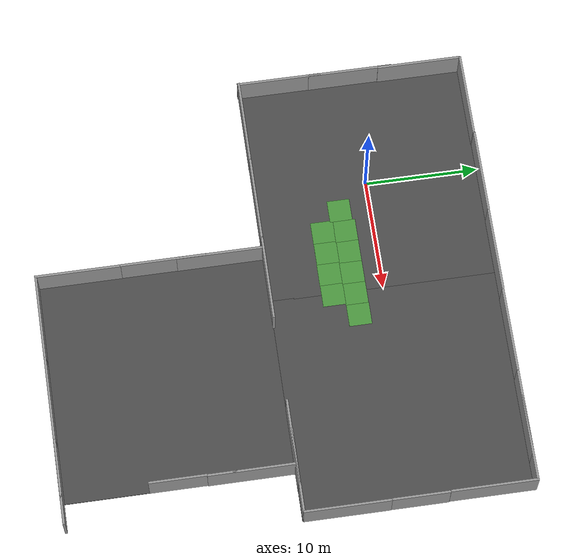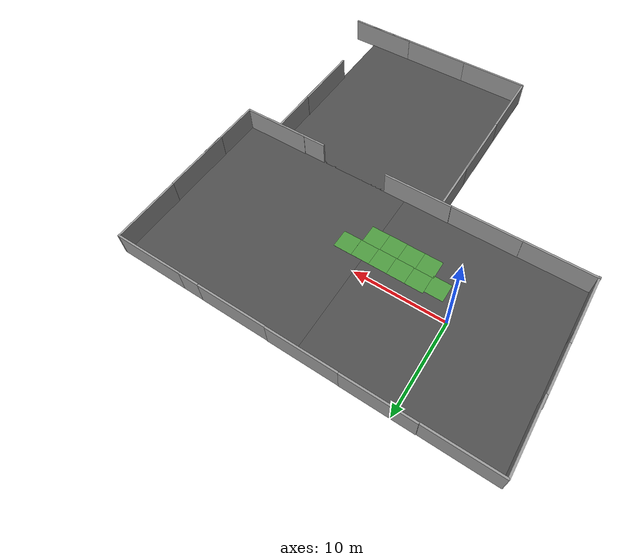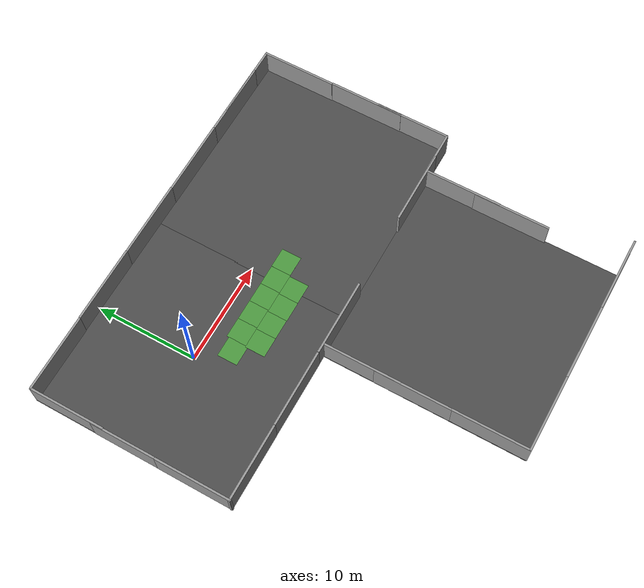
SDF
<sdf version="1.7">
 <world name="default">
  <light name="sun" type="directional">
   <pose>0 0 10 0 -0 0</pose>
   <diffuse>0.8 0.8 0.8 1</diffuse>
   <specular>0.1 0.1 0.1 1</specular>
   <attenuation>
    <range>1000</range>
    <constant>0.9</constant>
    <linear>0.01</linear>
    <quadratic>0.001</quadratic>
   </attenuation>
   <direction>-0.5 0.5 -1</direction>
   <spot><inner_angle>0</inner_angle><outer_angle>0</outer_angle><falloff>0</falloff></spot>
  </light>
  <gravity>0 0 -9.8</gravity>
  <magnetic_field>6e-06 2.3e-05 -4.2e-05</magnetic_field>
  <atmosphere type="adiabatic"/>
  <physics name="default_physics" default="0" type="ode">
   <max_step_size>0.001</max_step_size>
   <real_time_factor>1</real_time_factor>
   <real_time_update_rate>1000</real_time_update_rate>
  </physics>
  <scene><ambient>0.4 0.4 0.4 1</ambient><background>0.7 0.7 0.7 1</background><shadows>1</shadows></scene>
  <spherical_coordinates>
   <surface_model>EARTH_WGS84</surface_model>
   <latitude_deg>0</latitude_deg>
   <longitude_deg>0</longitude_deg>
   <elevation>0</elevation>
   <heading_deg>0</heading_deg>
  </spherical_coordinates>
  <model name="asphalt_plane">
   <static>1</static>
   <link name="link">
    <collision name="collision"><geometry><box><size>20 20 0.1</size></box></geometry></collision>
    <visual name="visual">
     <cast_shadows>0</cast_shadows>
     <geometry><box><size>20 20 0.1</size></box></geometry>
     <material>
      <script>
       <uri>model://asphalt_plane/materials/scripts</uri>
       <uri>model://asphalt_plane/materials/textures</uri>
       <name>vrc/asphalt</name>
      </script>
     </material>
    </visual>
   </link>
  </model>
  <model name="grey_wall">
   <static>1</static>
   <link name="link">
    <pose>0 0 1.4 0 -0 0</pose>
    <collision name="collision"><geometry><box><size>7.5 0.2 2.8</size></box></geometry></collision>
    <visual name="visual">
     <cast_shadows>0</cast_shadows>
     <geometry><box><size>7.5 0.2 2.8</size></box></geometry>
     <material>
      <script>
       <uri>model://grey_wall/materials/scripts</uri>
       <uri>model://grey_wall/materials/textures</uri>
       <name>vrc/grey_wall</name>
      </script>
     </material>
    </visual>
   </link>
   <pose>-6.34299 -9.98083 0 0 -0 0</pose>
  </model>
  <model name="grey_wall_clone">
   <static>1</static>
   <link name="link">
    <pose>0 0 1.4 0 -0 0</pose>
    <collision name="collision"><geometry><box><size>7.5 0.2 2.8</size></box></geometry></collision>
    <visual name="visual">
     <cast_shadows>0</cast_shadows>
     <geometry><box><size>7.5 0.2 2.8</size></box></geometry>
     <material>
      <script>
       <uri>model://grey_wall/materials/scripts</uri>
       <uri>model://grey_wall/materials/textures</uri>
       <name>vrc/grey_wall</name>
      </script>
     </material>
    </visual>
   </link>
   <pose>1.16889 -9.97033 0 0 -0 0</pose>
  </model>
  <model name="grey_wall_clone_0">
   <static>1</static>
   <link name="link">
    <pose>0 0 1.4 0 -0 0</pose>
    <collision name="collision"><geometry><box><size>7.5 0.2 2.8</size></box></geometry></collision>
    <visual name="visual">
     <cast_shadows>0</cast_shadows>
     <geometry><box><size>7.5 0.2 2.8</size></box></geometry>
     <material>
      <script>
       <uri>model://grey_wall/materials/scripts</uri>
       <uri>model://grey_wall/materials/textures</uri>
       <name>vrc/grey_wall</name>
      </script>
     </material>
    </visual>
   </link>
   <pose>8.70546 -9.9612 0 0 -0 0</pose>
  </model>
  <model name="asphalt_plane_0">
   <static>1</static>
   <link name="link">
    <collision name="collision"><geometry><box><size>20 20 0.1</size></box></geometry></collision>
    <visual name="visual">
     <cast_shadows>0</cast_shadows>
     <geometry><box><size>20 20 0.1</size></box></geometry>
     <material>
      <script>
       <uri>model://asphalt_plane/materials/scripts</uri>
       <uri>model://asphalt_plane/materials/textures</uri>
       <name>vrc/asphalt</name>
      </script>
     </material>
    </visual>
   </link>
   <pose>19.9219 0.006389 0 0 -0 0</pose>
  </model>
  <model name="grey_wall_clone_0_clone_clone">
   <static>1</static>
   <link name="link">
    <pose>0 0 1.4 0 -0 0</pose>
    <collision name="collision"><geometry><box><size>7.5 0.2 2.8</size></box></geometry></collision>
    <visual name="visual">
     <cast_shadows>0</cast_shadows>
     <geometry><box><size>7.5 0.2 2.8</size></box></geometry>
     <material>
      <script>
       <uri>model://grey_wall/materials/scripts</uri>
       <uri>model://grey_wall/materials/textures</uri>
       <name>vrc/grey_wall</name>
      </script>
     </material>
    </visual>
   </link>
   <pose>23.7504 -9.91232 0 0 -0 0</pose>
  </model>
  <model name="grey_wall_clone_0_clone_clone_1">
   <static>1</static>
   <link name="link">
    <pose>0 0 1.4 0 -0 0</pose>
    <collision name="collision"><geometry><box><size>7.5 0.2 2.8</size></box></geometry></collision>
    <visual name="visual">
     <cast_shadows>0</cast_shadows>
     <geometry><box><size>7.5 0.2 2.8</size></box></geometry>
     <material>
      <script>
       <uri>model://grey_wall/materials/scripts</uri>
       <uri>model://grey_wall/materials/textures</uri>
       <name>vrc/grey_wall</name>
      </script>
     </material>
    </visual>
   </link>
   <pose>1.3555 10.0153 0 0 -0 0</pose>
  </model>
  <model name="grey_wall_clone_0_clone_clone_2">
   <static>1</static>
   <link name="link">
    <pose>0 0 1.4 0 -0 0</pose>
    <collision name="collision"><geometry><box><size>7.5 0.2 2.8</size></box></geometry></collision>
    <visual name="visual">
     <cast_shadows>0</cast_shadows>
     <geometry><box><size>7.5 0.2 2.8</size></box></geometry>
     <material>
      <script>
       <uri>model://grey_wall/materials/scripts</uri>
       <uri>model://grey_wall/materials/textures</uri>
       <name>vrc/grey_wall</name>
      </script>
     </material>
    </visual>
   </link>
   <pose>8.86552 9.99863 0 0 -0 0</pose>
  </model>
  <model name="grey_wall_clone_0_clone_clone_0">
   <static>1</static>
   <link name="link">
    <pose>0 0 1.4 0 -0 0</pose>
    <collision name="collision"><geometry><box><size>7.5 0.2 2.8</size></box></geometry></collision>
    <visual name="visual">
     <cast_shadows>0</cast_shadows>
     <geometry><box><size>7.5 0.2 2.8</size></box></geometry>
     <material>
      <script>
       <uri>model://grey_wall/materials/scripts</uri>
       <uri>model://grey_wall/materials/textures</uri>
       <name>vrc/grey_wall</name>
      </script>
     </material>
    </visual>
   </link>
   <pose>-6.16796 9.97781 0 0 -0 0</pose>
  </model>
  <model name="grey_wall_clone_0_clone_clone_3">
   <static>1</static>
   <link name="link">
    <pose>0 0 1.4 0 -0 0</pose>
    <collision name="collision"><geometry><box><size>7.5 0.2 2.8</size></box></geometry></collision>
    <visual name="visual">
     <cast_shadows>0</cast_shadows>
     <geometry><box><size>7.5 0.2 2.8</size></box></geometry>
     <material>
      <script>
       <uri>model://grey_wall/materials/scripts</uri>
       <uri>model://grey_wall/materials/textures</uri>
       <name>vrc/grey_wall</name>
      </script>
     </material>
    </visual>
   </link>
   <pose>16.365 9.97288 0 0 -0 0</pose>
  </model>
  <model name="grey_wall_clone_0_clone_clone_4">
   <static>1</static>
   <link name="link">
    <pose>0 0 1.4 0 -0 0</pose>
    <collision name="collision"><geometry><box><size>7.5 0.2 2.8</size></box></geometry></collision>
    <visual name="visual">
     <cast_shadows>0</cast_shadows>
     <geometry><box><size>7.5 0.2 2.8</size></box></geometry>
     <material>
      <script>
       <uri>model://grey_wall/materials/scripts</uri>
       <uri>model://grey_wall/materials/textures</uri>
       <name>vrc/grey_wall</name>
      </script>
     </material>
    </visual>
   </link>
   <pose>23.8974 9.95874 0 0 -0 0</pose>
  </model>
  <model name="grey_wall_clone_0_clone_clone_4_clone">
   <static>1</static>
   <link name="link">
    <pose>0 0 1.4 0 -0 0</pose>
    <collision name="collision"><geometry><box><size>7.5 0.2 2.8</size></box></geometry></collision>
    <visual name="visual">
     <cast_shadows>0</cast_shadows>
     <geometry><box><size>7.5 0.2 2.8</size></box></geometry>
     <material>
      <script>
       <uri>model://grey_wall/materials/scripts</uri>
       <uri>model://grey_wall/materials/textures</uri>
       <name>vrc/grey_wall</name>
      </script>
     </material>
    </visual>
   </link>
   <pose>29.9378 6.30804 0 0 -0 1.57</pose>
  </model>
  <model name="grey_wall_clone_0_clone_clone_4_clone_0">
   <static>1</static>
   <link name="link">
    <pose>0 0 1.4 0 -0 0</pose>
    <collision name="collision"><geometry><box><size>7.5 0.2 2.8</size></box></geometry></collision>
    <visual name="visual">
     <cast_shadows>0</cast_shadows>
     <geometry><box><size>7.5 0.2 2.8</size></box></geometry>
     <material>
      <script>
       <uri>model://grey_wall/materials/scripts</uri>
       <uri>model://grey_wall/materials/textures</uri>
       <name>vrc/grey_wall</name>
      </script>
     </material>
    </visual>
   </link>
   <pose>26.2746 -9.87846 0 0 -0 0</pose>
  </model>
  <model name="grey_wall_clone_0_clone_clone_4_clone_1">
   <static>1</static>
   <link name="link">
    <pose>0 0 1.4 0 -0 0</pose>
    <collision name="collision"><geometry><box><size>7.5 0.2 2.8</size></box></geometry></collision>
    <visual name="visual">
     <cast_shadows>0</cast_shadows>
     <geometry><box><size>7.5 0.2 2.8</size></box></geometry>
     <material>
      <script>
       <uri>model://grey_wall/materials/scripts</uri>
       <uri>model://grey_wall/materials/textures</uri>
       <name>vrc/grey_wall</name>
      </script>
     </material>
    </visual>
   </link>
   <pose>26.1143 9.96003 0 0 -0 0</pose>
  </model>
  <model name="grey_wall_clone_0_clone_clone_4_clone_clone">
   <static>1</static>
   <link name="link">
    <pose>0 0 1.4 0 -0 0</pose>
    <collision name="collision"><geometry><box><size>7.5 0.2 2.8</size></box></geometry></collision>
    <visual name="visual">
     <cast_shadows>0</cast_shadows>
     <geometry><box><size>7.5 0.2 2.8</size></box></geometry>
     <material>
      <script>
       <uri>model://grey_wall/materials/scripts</uri>
       <uri>model://grey_wall/materials/textures</uri>
       <name>vrc/grey_wall</name>
      </script>
     </material>
    </visual>
   </link>
   <pose>29.9748 -1.21482 0 0 -0 1.57</pose>
  </model>
  <model name="grey_wall_clone_0_clone_clone_4_clone_clone_0">
   <static>1</static>
   <link name="link">
    <pose>0 0 1.4 0 -0 0</pose>
    <collision name="collision"><geometry><box><size>7.5 0.2 2.8</size></box></geometry></collision>
    <visual name="visual">
     <cast_shadows>0</cast_shadows>
     <geometry><box><size>7.5 0.2 2.8</size></box></geometry>
     <material>
      <script>
       <uri>model://grey_wall/materials/scripts</uri>
       <uri>model://grey_wall/materials/textures</uri>
       <name>vrc/grey_wall</name>
      </script>
     </material>
    </visual>
   </link>
   <pose>29.9905 -6.17844 0 0 -0 1.57</pose>
  </model>
  <model name="grey_wall_clone_0_clone_clone_4_clone_clone_1">
   <static>1</static>
   <link name="link">
    <pose>0 0 1.4 0 -0 0</pose>
    <collision name="collision"><geometry><box><size>7.5 0.2 2.8</size></box></geometry></collision>
    <visual name="visual">
     <cast_shadows>0</cast_shadows>
     <geometry><box><size>7.5 0.2 2.8</size></box></geometry>
     <material>
      <script>
       <uri>model://grey_wall/materials/scripts</uri>
       <uri>model://grey_wall/materials/textures</uri>
       <name>vrc/grey_wall</name>
      </script>
     </material>
    </visual>
   </link>
   <pose>-9.87952 6.28271 0 0 -0 1.57</pose>
  </model>
  <model name="grey_wall_clone_0_clone_clone_4_clone_clone_2">
   <static>1</static>
   <link name="link">
    <pose>0 0 1.4 0 -0 0</pose>
    <collision name="collision"><geometry><box><size>7.5 0.2 2.8</size></box></geometry></collision>
    <visual name="visual">
     <cast_shadows>0</cast_shadows>
     <geometry><box><size>7.5 0.2 2.8</size></box></geometry>
     <material>
      <script>
       <uri>model://grey_wall/materials/scripts</uri>
       <uri>model://grey_wall/materials/textures</uri>
       <name>vrc/grey_wall</name>
      </script>
     </material>
    </visual>
   </link>
   <pose>-9.94969 -6.38748 0 0 -0 1.57</pose>
  </model>
  <model name="grey_wall_clone_0_clone_clone_4_clone_clone_3">
   <static>1</static>
   <link name="link">
    <pose>0 0 1.4 0 -0 0</pose>
    <collision name="collision"><geometry><box><size>7.5 0.2 2.8</size></box></geometry></collision>
    <visual name="visual">
     <cast_shadows>0</cast_shadows>
     <geometry><box><size>7.5 0.2 2.8</size></box></geometry>
     <material>
      <script>
       <uri>model://grey_wall/materials/scripts</uri>
       <uri>model://grey_wall/materials/textures</uri>
       <name>vrc/grey_wall</name>
      </script>
     </material>
    </visual>
   </link>
   <pose>-9.93378 0.027886 0 0 -0 1.57</pose>
  </model>
  <audio><device>default</device></audio>
  <model name="asphalt_plane_1">
   <static>1</static>
   <link name="link">
    <collision name="collision"><geometry><box><size>20 20 0.1</size></box></geometry></collision>
    <visual name="visual">
     <cast_shadows>0</cast_shadows>
     <geometry><box><size>20 20 0.1</size></box></geometry>
     <material>
      <script>
       <uri>model://asphalt_plane/materials/scripts</uri>
       <uri>model://asphalt_plane/materials/textures</uri>
       <name>vrc/asphalt</name>
      </script>
     </material>
    </visual>
   </link>
   <pose>15.7588 -19.8717 0 0 -0 0</pose>
  </model>
  <model name="grey_wall_0">
   <static>1</static>
   <link name="link">
    <pose>0 0 1.4 0 -0 0</pose>
    <collision name="collision"><geometry><box><size>7.5 0.2 2.8</size></box></geometry></collision>
    <visual name="visual">
     <cast_shadows>0</cast_shadows>
     <geometry><box><size>7.5 0.2 2.8</size></box></geometry>
     <material>
      <script>
       <uri>model://grey_wall/materials/scripts</uri>
       <uri>model://grey_wall/materials/textures</uri>
       <name>vrc/grey_wall</name>
      </script>
     </material>
    </visual>
   </link>
   <pose>9.57925 -29.847 0 0 -0 0</pose>
  </model>
  <model name="grey_wall_0_clone">
   <static>1</static>
   <link name="link">
    <pose>0 0 1.4 0 -0 0</pose>
    <collision name="collision"><geometry><box><size>7.5 0.2 2.8</size></box></geometry></collision>
    <visual name="visual">
     <cast_shadows>0</cast_shadows>
     <geometry><box><size>7.5 0.2 2.8</size></box></geometry>
     <material>
      <script>
       <uri>model://grey_wall/materials/scripts</uri>
       <uri>model://grey_wall/materials/textures</uri>
       <name>vrc/grey_wall</name>
      </script>
     </material>
    </visual>
   </link>
   <pose>17.0707 -29.8389 0 0 -0 0</pose>
  </model>
  <model name="grey_wall_0_clone_0">
   <static>1</static>
   <link name="link">
    <pose>0 0 1.4 0 -0 0</pose>
    <collision name="collision"><geometry><box><size>7.5 0.2 2.8</size></box></geometry></collision>
    <visual name="visual">
     <cast_shadows>0</cast_shadows>
     <geometry><box><size>7.5 0.2 2.8</size></box></geometry>
     <material>
      <script>
       <uri>model://grey_wall/materials/scripts</uri>
       <uri>model://grey_wall/materials/textures</uri>
       <name>vrc/grey_wall</name>
      </script>
     </material>
    </visual>
   </link>
   <pose>24.5202 -29.8309 0 0 -0 0</pose>
  </model>
  <model name="grey_wall_0_clone_1">
   <static>1</static>
   <link name="link">
    <pose>0 0 1.4 0 -0 0</pose>
    <collision name="collision"><geometry><box><size>7.5 0.2 2.8</size></box></geometry></collision>
    <visual name="visual">
     <cast_shadows>0</cast_shadows>
     <geometry><box><size>7.5 0.2 2.8</size></box></geometry>
     <material>
      <script>
       <uri>model://grey_wall/materials/scripts</uri>
       <uri>model://grey_wall/materials/textures</uri>
       <name>vrc/grey_wall</name>
      </script>
     </material>
    </visual>
   </link>
   <pose>24.5331 -29.8401 0 0 -0 0</pose>
  </model>
  <model name="grey_wall_0_clone_0_clone">
   <static>1</static>
   <link name="link">
    <pose>0 0 1.4 0 -0 0</pose>
    <collision name="collision"><geometry><box><size>7.5 0.2 2.8</size></box></geometry></collision>
    <visual name="visual">
     <cast_shadows>0</cast_shadows>
     <geometry><box><size>7.5 0.2 2.8</size></box></geometry>
     <material>
      <script>
       <uri>model://grey_wall/materials/scripts</uri>
       <uri>model://grey_wall/materials/textures</uri>
       <name>vrc/grey_wall</name>
      </script>
     </material>
    </visual>
   </link>
   <pose>25.6822 -18.7134 0 0 -0 1.57134</pose>
  </model>
  <model name="grey_wall_0_clone_0_clone_0">
   <static>1</static>
   <link name="link">
    <pose>0 0 1.4 0 -0 0</pose>
    <collision name="collision"><geometry><box><size>7.5 0.2 2.8</size></box></geometry></collision>
    <visual name="visual">
     <cast_shadows>0</cast_shadows>
     <geometry><box><size>7.5 0.2 2.8</size></box></geometry>
     <material>
      <script>
       <uri>model://grey_wall/materials/scripts</uri>
       <uri>model://grey_wall/materials/textures</uri>
       <name>vrc/grey_wall</name>
      </script>
     </material>
    </visual>
   </link>
   <pose>25.7225 -13.7256 0 0 -0 1.57134</pose>
  </model>
  <model name="grey_wall_0_clone_0_clone_1">
   <static>1</static>
   <link name="link">
    <pose>0 0 1.4 0 -0 0</pose>
    <collision name="collision"><geometry><box><size>7.5 0.2 2.8</size></box></geometry></collision>
    <visual name="visual">
     <cast_shadows>0</cast_shadows>
     <geometry><box><size>7.5 0.2 2.8</size></box></geometry>
     <material>
      <script>
       <uri>model://grey_wall/materials/scripts</uri>
       <uri>model://grey_wall/materials/textures</uri>
       <name>vrc/grey_wall</name>
      </script>
     </material>
    </visual>
   </link>
   <pose>5.87461 -26.2028 0 0 -0 1.57134</pose>
  </model>
  <model name="grey_wall_0_clone_0_clone_2">
   <static>1</static>
   <link name="link">
    <pose>0 0 1.4 0 -0 0</pose>
    <collision name="collision"><geometry><box><size>7.5 0.2 2.8</size></box></geometry></collision>
    <visual name="visual">
     <cast_shadows>0</cast_shadows>
     <geometry><box><size>7.5 0.2 2.8</size></box></geometry>
     <material>
      <script>
       <uri>model://grey_wall/materials/scripts</uri>
       <uri>model://grey_wall/materials/textures</uri>
       <name>vrc/grey_wall</name>
      </script>
     </material>
    </visual>
   </link>
   <pose>5.85932 -18.753 0 0 -0 1.57134</pose>
  </model>
  <model name="grey_wall_0_clone_0_clone_3">
   <static>1</static>
   <link name="link">
    <pose>0 0 1.4 0 -0 0</pose>
    <collision name="collision"><geometry><box><size>7.5 0.2 2.8</size></box></geometry></collision>
    <visual name="visual">
     <cast_shadows>0</cast_shadows>
     <geometry><box><size>7.5 0.2 2.8</size></box></geometry>
     <material>
      <script>
       <uri>model://grey_wall/materials/scripts</uri>
       <uri>model://grey_wall/materials/textures</uri>
       <name>vrc/grey_wall</name>
      </script>
     </material>
    </visual>
   </link>
   <pose>5.87054 -13.8283 0 0 -0 1.57134</pose>
  </model>
  <model name="grass">
   <static>1</static>
   <link name="grass_plane">
    <visual name="visual">
     <pose>0 0 0.07 0 -0 0</pose>
     <cast_shadows>0</cast_shadows>
     <geometry><plane><normal>0 0 1</normal><size>2 2</size></plane></geometry>
     <material>
      <script>
       <uri>model://grass/materials/scripts</uri>
       <uri>model://grass/materials/textures</uri>
       <name>vrc/grass_small</name>
      </script>
     </material>
    </visual>
   </link>
   <pose>12.2113 -2.43669 0 0 -0 0</pose>
  </model>
  <model name="grass_0">
   <static>1</static>
   <link name="grass_plane">
    <visual name="visual">
     <pose>0 0 0.07 0 -0 0</pose>
     <cast_shadows>0</cast_shadows>
     <geometry><plane><normal>0 0 1</normal><size>2 2</size></plane></geometry>
     <material>
      <script>
       <uri>model://grass/materials/scripts</uri>
       <uri>model://grass/materials/textures</uri>
       <name>vrc/grass_small</name>
      </script>
     </material>
    </visual>
   </link>
   <pose>10.2104 -2.45309 0 0 -0 0</pose>
  </model>
  <model name="grass_1">
   <static>1</static>
   <link name="grass_plane">
    <visual name="visual">
     <pose>0 0 0.07 0 -0 0</pose>
     <cast_shadows>0</cast_shadows>
     <geometry><plane><normal>0 0 1</normal><size>2 2</size></plane></geometry>
     <material>
      <script>
       <uri>model://grass/materials/scripts</uri>
       <uri>model://grass/materials/textures</uri>
       <name>vrc/grass_small</name>
      </script>
     </material>
    </visual>
   </link>
   <pose>8.2176 -2.45588 0 0 -0 0</pose>
  </model>
  <model name="grass_2">
   <static>1</static>
   <link name="grass_plane">
    <visual name="visual">
     <pose>0 0 0.07 0 -0 0</pose>
     <cast_shadows>0</cast_shadows>
     <geometry><plane><normal>0 0 1</normal><size>2 2</size></plane></geometry>
     <material>
      <script>
       <uri>model://grass/materials/scripts</uri>
       <uri>model://grass/materials/textures</uri>
       <name>vrc/grass_small</name>
      </script>
     </material>
    </visual>
   </link>
   <pose>6.22897 -2.45333 0 0 -0 0</pose>
  </model>
  <model name="grass_3">
   <static>1</static>
   <link name="grass_plane">
    <visual name="visual">
     <pose>0 0 0.07 0 -0 0</pose>
     <cast_shadows>0</cast_shadows>
     <geometry><plane><normal>0 0 1</normal><size>2 2</size></plane></geometry>
     <material>
      <script>
       <uri>model://grass/materials/scripts</uri>
       <uri>model://grass/materials/textures</uri>
       <name>vrc/grass_small</name>
      </script>
     </material>
    </visual>
   </link>
   <pose>10.0994 -4.42922 0 0 -0 0</pose>
  </model>
  <model name="grass_4">
   <static>1</static>
   <link name="grass_plane">
    <visual name="visual">
     <pose>0 0 0.07 0 -0 0</pose>
     <cast_shadows>0</cast_shadows>
     <geometry><plane><normal>0 0 1</normal><size>2 2</size></plane></geometry>
     <material>
      <script>
       <uri>model://grass/materials/scripts</uri>
       <uri>model://grass/materials/textures</uri>
       <name>vrc/grass_small</name>
      </script>
     </material>
    </visual>
   </link>
   <pose>8.1104 -4.44519 0 0 -0 0</pose>
  </model>
  <model name="grass_5">
   <static>1</static>
   <link name="grass_plane">
    <visual name="visual">
     <pose>0 0 0.07 0 -0 0</pose>
     <cast_shadows>0</cast_shadows>
     <geometry><plane><normal>0 0 1</normal><size>2 2</size></plane></geometry>
     <material>
      <script>
       <uri>model://grass/materials/scripts</uri>
       <uri>model://grass/materials/textures</uri>
       <name>vrc/grass_small</name>
      </script>
     </material>
    </visual>
   </link>
   <pose>6.11785 -4.41983 0 0 -0 0</pose>
  </model>
  <model name="grass_6">
   <static>1</static>
   <link name="grass_plane">
    <visual name="visual">
     <pose>0 0 0.07 0 -0 0</pose>
     <cast_shadows>0</cast_shadows>
     <geometry><plane><normal>0 0 1</normal><size>2 2</size></plane></geometry>
     <material>
      <script>
       <uri>model://grass/materials/scripts</uri>
       <uri>model://grass/materials/textures</uri>
       <name>vrc/grass_small</name>
      </script>
     </material>
    </visual>
   </link>
   <pose>4.23941 -2.44836 0 0 -0 0</pose>
  </model>
  <model name="grass_7">
   <static>1</static>
   <link name="grass_plane">
    <visual name="visual">
     <pose>0 0 0.07 0 -0 0</pose>
     <cast_shadows>0</cast_shadows>
     <geometry><plane><normal>0 0 1</normal><size>2 2</size></plane></geometry>
     <material>
      <script>
       <uri>model://grass/materials/scripts</uri>
       <uri>model://grass/materials/textures</uri>
       <name>vrc/grass_small</name>
      </script>
     </material>
    </visual>
   </link>
   <pose>4.12441 -4.42703 0 0 -0 0</pose>
  </model>
  <model name="grass_8">
   <static>1</static>
   <link name="grass_plane">
    <visual name="visual">
     <pose>0 0 0.07 0 -0 0</pose>
     <cast_shadows>0</cast_shadows>
     <geometry><plane><normal>0 0 1</normal><size>2 2</size></plane></geometry>
     <material>
      <script>
       <uri>model://grass/materials/scripts</uri>
       <uri>model://grass/materials/textures</uri>
       <name>vrc/grass_small</name>
      </script>
     </material>
    </visual>
   </link>
   <pose>2.25707 -2.67802 0 0 -0 0</pose>
  </model>
 </world>
</sdf>
